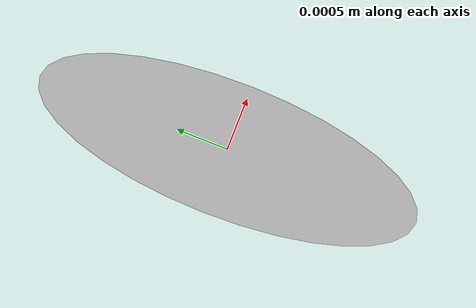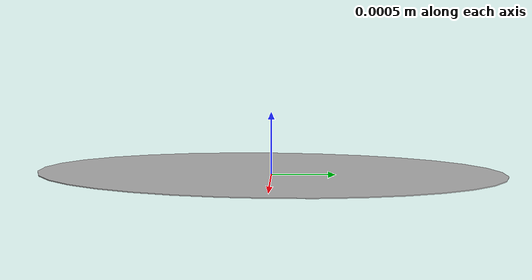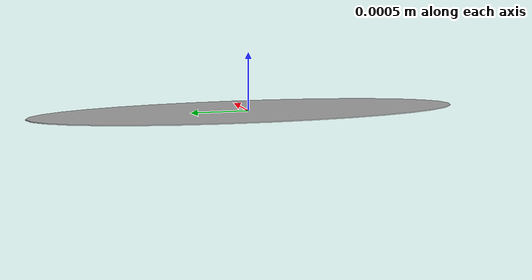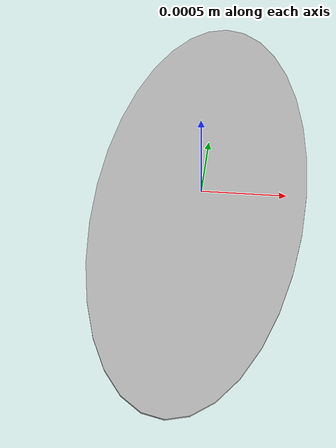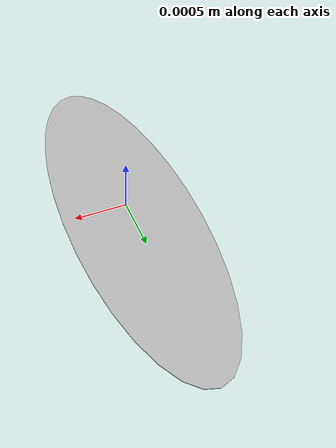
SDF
<?xml version="1.0" ?>
<sdf version="1.4">
	<model name="Marker1">
		<static>true</static>
		<link name="link">
			<visual name="visual">
				<geometry>
					<mesh>
						<uri>model://whycon_marker/meshes/whycon_marker.dae</uri>
						<scale>0.025 0.075 0.075</scale>
					</mesh>
				</geometry>
			</visual>
		</link>
	</model>
</sdf>
